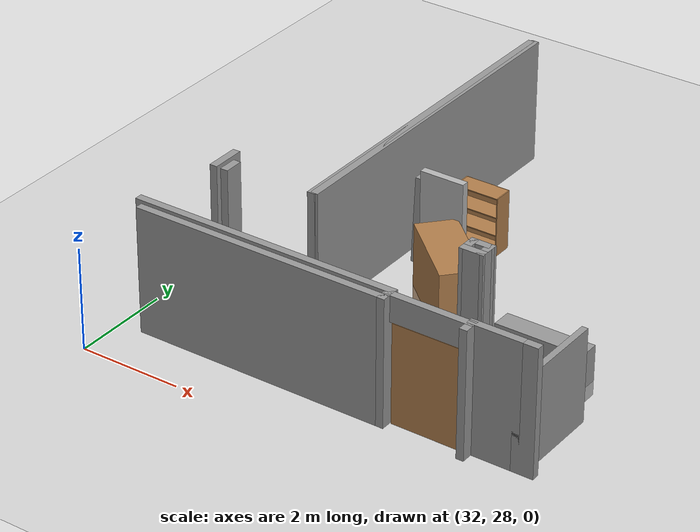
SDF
<sdf version="1.6">
 <world name="default">
  <model name="ground_plane">
   <static>1</static>
   <link name="link">
    <collision name="collision">
     <geometry><plane><normal>0 0 1</normal><size>100 100</size></plane></geometry>
     <surface><friction><ode><mu>100</mu><mu2>50</mu2></ode></friction></surface>
    </collision>
    <visual name="visual">
     <cast_shadows>0</cast_shadows>
     <geometry><plane><normal>0 0 1</normal><size>100 100</size></plane></geometry>
     <material>
      <script><uri>file://media/materials/scripts/gazebo.material</uri><name>Gazebo/Grey</name></script>
     </material>
    </visual>
   </link>
  </model>
  <model name="CVSSP">
   <pose>23.8714 24.094 0 0 -0 0</pose>
   <link name="Wall_101">
    <collision name="Wall_101_Collision">
     <geometry><box><size>0.38805 0.15 2.5</size></box></geometry>
     <pose>0 0 1.25 0 -0 0</pose>
    </collision>
    <visual name="Wall_101_Visual">
     <pose>0 0 1.25 0 -0 0</pose>
     <geometry><box><size>0.38805 0.15 2.5</size></box></geometry>
     <material>
      <script><uri>file://media/materials/scripts/gazebo.material</uri><name>Gazebo/Grey</name></script>
      <ambient>1 1 1 1</ambient>
     </material>
    </visual>
    <pose>13.6125 5.08725 0 0 0 -1.5708</pose>
   </link>
   <link name="Wall_103">
    <pose>14.4193 5.12692 0 0 -0 3.13861</pose>
    <visual name="Wall_103_Visual_0">
     <pose>-0.803949 0 1.25 0 -0 0</pose>
     <geometry><box><size>0.113401 0.15 2.5</size></box></geometry>
     <material>
      <script><uri>file://media/materials/scripts/gazebo.material</uri><name>Gazebo/Grey</name></script>
      <ambient>1 1 1 1</ambient>
     </material>
    </visual>
    <collision name="Wall_103_Collision_0">
     <geometry><box><size>0.113401 0.15 2.5</size></box></geometry>
     <pose>-0.803949 0 1.25 0 -0 0</pose>
    </collision>
    <visual name="Wall_103_Visual_1">
     <pose>0.799121 0 1.25 0 -0 0</pose>
     <geometry><box><size>0.123058 0.15 2.5</size></box></geometry>
     <material>
      <script><uri>file://media/materials/scripts/gazebo.material</uri><name>Gazebo/Grey</name></script>
      <ambient>1 1 1 1</ambient>
     </material>
    </visual>
    <collision name="Wall_103_Collision_1">
     <geometry><box><size>0.123058 0.15 2.5</size></box></geometry>
     <pose>0.799121 0 1.25 0 -0 0</pose>
    </collision>
    <visual name="Wall_103_Visual_2">
     <pose>-0.004828 0 2.25 0 -0 0</pose>
     <geometry><box><size>1.48484 0.15 0.5</size></box></geometry>
     <material>
      <script><uri>file://media/materials/scripts/gazebo.material</uri><name>Gazebo/Grey</name></script>
      <ambient>1 1 1 1</ambient>
     </material>
    </visual>
    <collision name="Wall_103_Collision_2">
     <geometry><box><size>1.48484 0.15 0.5</size></box></geometry>
     <pose>-0.004828 0 2.25 0 -0 0</pose>
    </collision>
   </link>
   <link name="Wall_105">
    <collision name="Wall_105_Collision">
     <geometry><box><size>0.321526 0.15 2.5</size></box></geometry>
     <pose>0 0 1.25 0 -0 0</pose>
    </collision>
    <visual name="Wall_105_Visual">
     <pose>0 0 1.25 0 -0 0</pose>
     <geometry><box><size>0.321526 0.15 2.5</size></box></geometry>
     <material>
      <script><uri>file://media/materials/scripts/gazebo.material</uri><name>Gazebo/Grey</name></script>
      <ambient>1 1 1 1</ambient>
     </material>
    </visual>
    <pose>15.205 5.04453 0 0 0 -1.5708</pose>
   </link>
   <link name="Wall_110">
    <collision name="Wall_110_Collision">
     <geometry><box><size>0.435877 0.15 2.5</size></box></geometry>
     <pose>0 0 1.25 0 -0 0</pose>
    </collision>
    <visual name="Wall_110_Visual">
     <pose>0 0 1.25 0 -0 0</pose>
     <geometry><box><size>0.435877 0.15 2.5</size></box></geometry>
     <material>
      <script><uri>file://media/materials/scripts/gazebo.material</uri><name>Gazebo/Grey</name></script>
      <ambient>1 1 1 1</ambient>
     </material>
    </visual>
    <pose>16.2513 5.17604 0 0 -0 0</pose>
   </link>
   <link name="Wall_112">
    <collision name="Wall_112_Collision">
     <geometry><box><size>1.05344 0.15 2.5</size></box></geometry>
     <pose>0 0 1.25 0 -0 0</pose>
    </collision>
    <visual name="Wall_112_Visual">
     <pose>0 0 1.25 0 -0 0</pose>
     <geometry><box><size>1.05344 0.15 2.5</size></box></geometry>
     <material>
      <script><uri>file://media/materials/scripts/gazebo.material</uri><name>Gazebo/Grey</name></script>
      <ambient>1 1 1 1</ambient>
     </material>
    </visual>
    <pose>15.6567 5.17604 0 0 -0 3.14159</pose>
   </link>
   <link name="Wall_41">
    <collision name="Wall_41_Collision">
     <geometry><box><size>0.67 0.15 2.5</size></box></geometry>
     <pose>0 0 1.25 0 -0 0</pose>
    </collision>
    <visual name="Wall_41_Visual">
     <pose>0 0 1.25 0 -0 0</pose>
     <geometry><box><size>0.67 0.15 2.5</size></box></geometry>
     <material>
      <script><uri>file://media/materials/scripts/gazebo.material</uri><name>Gazebo/Grey</name></script>
      <ambient>1 1 1 1</ambient>
     </material>
    </visual>
    <pose>8.7575 7.13868 0 0 0 -1.5708</pose>
   </link>
   <link name="Wall_45">
    <collision name="Wall_45_Collision">
     <geometry><box><size>0.380217 0.15 2.5</size></box></geometry>
     <pose>0 0 1.25 0 -0 0</pose>
    </collision>
    <visual name="Wall_45_Visual">
     <pose>0 0 1.25 0 -0 0</pose>
     <geometry><box><size>0.380217 0.15 2.5</size></box></geometry>
     <material>
      <script><uri>file://media/materials/scripts/gazebo.material</uri><name>Gazebo/Grey</name></script>
      <ambient>1 1 1 1</ambient>
     </material>
    </visual>
    <pose>8.9975 6.98369 0 0 0 -1.5708</pose>
   </link>
   <link name="Wall_48">
    <collision name="Wall_48_Collision">
     <geometry><box><size>0.485616 0.15 2.5</size></box></geometry>
     <pose>0 0 1.25 0 -0 0</pose>
    </collision>
    <visual name="Wall_48_Visual">
     <pose>0 0 1.25 0 -0 0</pose>
     <geometry><box><size>0.485616 0.15 2.5</size></box></geometry>
     <material>
      <script><uri>file://media/materials/scripts/gazebo.material</uri><name>Gazebo/Grey</name></script>
      <ambient>1 1 1 1</ambient>
     </material>
    </visual>
    <pose>13.9944 7.29164 0 0 0 -0.000129</pose>
   </link>
   <link name="Wall_49">
    <collision name="Wall_49_Collision">
     <geometry><box><size>0.405637 0.15 2.5</size></box></geometry>
     <pose>0 0 1.25 0 -0 0</pose>
    </collision>
    <visual name="Wall_49_Visual">
     <pose>0 0 1.25 0 -0 0</pose>
     <geometry><box><size>0.405637 0.15 2.5</size></box></geometry>
     <material>
      <script><uri>file://media/materials/scripts/gazebo.material</uri><name>Gazebo/Grey</name></script>
      <ambient>1 1 1 1</ambient>
     </material>
    </visual>
    <pose>14.162 7.1638 0 0 0 -1.57228</pose>
   </link>
   <link name="Wall_50">
    <collision name="Wall_50_Collision">
     <geometry><box><size>0.483145 0.15 2.5</size></box></geometry>
     <pose>0 0 1.25 0 -0 0</pose>
    </collision>
    <visual name="Wall_50_Visual">
     <pose>0 0 1.25 0 -0 0</pose>
     <geometry><box><size>0.483145 0.15 2.5</size></box></geometry>
     <material>
      <script><uri>file://media/materials/scripts/gazebo.material</uri><name>Gazebo/Grey</name></script>
      <ambient>1 1 1 1</ambient>
     </material>
    </visual>
    <pose>13.9952 7.03593 0 0 0 -3.14129</pose>
   </link>
   <link name="Wall_51">
    <collision name="Wall_51_Collision">
     <geometry><box><size>0.405791 0.15 2.5</size></box></geometry>
     <pose>0 0 1.25 0 -0 0</pose>
    </collision>
    <visual name="Wall_51_Visual">
     <pose>0 0 1.25 0 -0 0</pose>
     <geometry><box><size>0.405791 0.15 2.5</size></box></geometry>
     <material>
      <script><uri>file://media/materials/scripts/gazebo.material</uri><name>Gazebo/Grey</name></script>
      <ambient>1 1 1 1</ambient>
     </material>
    </visual>
    <pose>13.8276 7.16378 0 0 -0 1.5792</pose>
   </link>
   <link name="Wall_53">
    <collision name="Wall_53_Collision">
     <geometry><box><size>7.09358 0.15 2.5</size></box></geometry>
     <pose>0 0 1.25 0 -0 0</pose>
    </collision>
    <visual name="Wall_53_Visual">
     <pose>0 0 1.25 0 -0 0</pose>
     <geometry><box><size>7.09358 0.15 2.5</size></box></geometry>
     <material>
      <script><uri>file://media/materials/scripts/gazebo.material</uri><name>Gazebo/Grey</name></script>
      <ambient>1 1 1 1</ambient>
     </material>
    </visual>
    <pose>10.7501 10.5821 0 0 0 -1.5708</pose>
   </link>
   <link name="Wall_60">
    <collision name="Wall_60_Collision">
     <geometry><box><size>7.09041 0.15 2.5</size></box></geometry>
     <pose>0 0 1.25 0 -0 0</pose>
    </collision>
    <visual name="Wall_60_Visual">
     <pose>0 0 1.25 0 -0 0</pose>
     <geometry><box><size>7.09041 0.15 2.5</size></box></geometry>
     <material>
      <script><uri>file://media/materials/scripts/gazebo.material</uri><name>Gazebo/Grey</name></script>
      <ambient>0.588235 0.588235 0.588235 1</ambient>
     </material>
    </visual>
    <pose>10.6949 10.5553 0 0 0 -1.57007</pose>
   </link>
   <link name="Wall_95">
    <collision name="Wall_95_Collision">
     <geometry><box><size>5.10938 0.15 2.5</size></box></geometry>
     <pose>0 0 1.25 0 -0 0</pose>
    </collision>
    <visual name="Wall_95_Visual">
     <pose>0 0 1.25 0 -0 0</pose>
     <geometry><box><size>5.10938 0.15 2.5</size></box></geometry>
     <material>
      <script><uri>file://media/materials/scripts/gazebo.material</uri><name>Gazebo/Grey</name></script>
      <ambient>1 1 1 1</ambient>
     </material>
    </visual>
    <pose>11.1328 4.96823 0 0 -0 0</pose>
   </link>
   <link name="Wall_99">
    <collision name="Wall_99_Collision">
     <geometry><box><size>5.30775 0.15 2.5</size></box></geometry>
     <pose>0 0 1.25 0 -0 0</pose>
    </collision>
    <visual name="Wall_99_Visual">
     <pose>0 0 1.25 0 -0 0</pose>
     <geometry><box><size>5.30775 0.15 2.5</size></box></geometry>
     <material>
      <script><uri>file://media/materials/scripts/gazebo.material</uri><name>Gazebo/Grey</name></script>
      <ambient>1 1 1 1</ambient>
     </material>
    </visual>
    <pose>11.0336 5.20628 0 0 -0 3.14159</pose>
   </link>
   <static>1</static>
  </model>
  <model name="bookshelf">
   <static>1</static>
   <link name="link">
    <inertial><mass>1</mass></inertial>
    <collision name="back">
     <pose>0 0.005 0.6 0 -0 0</pose>
     <geometry><box><size>0.9 0.01 1.2</size></box></geometry>
    </collision>
    <visual name="visual1">
     <pose>0 0.005 0.6 0 -0 0</pose>
     <geometry><box><size>0.9 0.01 1.2</size></box></geometry>
     <material>
      <script><uri>file://media/materials/scripts/gazebo.material</uri><name>Gazebo/Wood</name></script>
     </material>
    </visual>
    <collision name="left_side">
     <pose>0.45 -0.195 0.6 0 -0 0</pose>
     <geometry><box><size>0.02 0.4 1.2</size></box></geometry>
    </collision>
    <visual name="visual2">
     <pose>0.45 -0.195 0.6 0 -0 0</pose>
     <geometry><box><size>0.02 0.4 1.2</size></box></geometry>
     <material>
      <script><uri>file://media/materials/scripts/gazebo.material</uri><name>Gazebo/Wood</name></script>
     </material>
    </visual>
    <collision name="right_side">
     <pose>-0.45 -0.195 0.6 0 -0 0</pose>
     <geometry><box><size>0.02 0.4 1.2</size></box></geometry>
    </collision>
    <visual name="visual3">
     <pose>-0.45 -0.195 0.6 0 -0 0</pose>
     <geometry><box><size>0.02 0.4 1.2</size></box></geometry>
     <material>
      <script><uri>file://media/materials/scripts/gazebo.material</uri><name>Gazebo/Wood</name></script>
     </material>
    </visual>
    <collision name="bottom">
     <pose>0 -0.195 0.03 0 -0 0</pose>
     <geometry><box><size>0.88 0.4 0.06</size></box></geometry>
    </collision>
    <visual name="visual4">
     <pose>0 -0.195 0.03 0 -0 0</pose>
     <geometry><box><size>0.88 0.4 0.06</size></box></geometry>
     <material>
      <script><uri>file://media/materials/scripts/gazebo.material</uri><name>Gazebo/Wood</name></script>
     </material>
    </visual>
    <collision name="top">
     <pose>0 -0.195 1.19 0 -0 0</pose>
     <geometry><box><size>0.88 0.4 0.02</size></box></geometry>
    </collision>
    <visual name="visual5">
     <pose>0 -0.195 1.19 0 -0 0</pose>
     <geometry><box><size>0.88 0.4 0.02</size></box></geometry>
     <material>
      <script><uri>file://media/materials/scripts/gazebo.material</uri><name>Gazebo/Wood</name></script>
     </material>
    </visual>
    <collision name="low_shelf">
     <pose>0 -0.195 0.43 0 -0 0</pose>
     <geometry><box><size>0.88 0.4 0.02</size></box></geometry>
    </collision>
    <visual name="visual6">
     <pose>0 -0.195 0.43 0 -0 0</pose>
     <geometry><box><size>0.88 0.4 0.02</size></box></geometry>
     <material>
      <script><uri>file://media/materials/scripts/gazebo.material</uri><name>Gazebo/Wood</name></script>
     </material>
    </visual>
    <collision name="high_shelf">
     <pose>0 -0.195 0.8 0 -0 0</pose>
     <geometry><box><size>0.88 0.4 0.02</size></box></geometry>
    </collision>
    <visual name="visual7">
     <pose>0 -0.195 0.8 0 -0 0</pose>
     <geometry><box><size>0.88 0.4 0.02</size></box></geometry>
     <material>
      <script><uri>file://media/materials/scripts/gazebo.material</uri><name>Gazebo/Wood</name></script>
     </material>
    </visual>
   </link>
   <pose>35.6315 35.0893 0 0 -0 0</pose>
  </model>
  <model name="door">
   <link name="link_0">
    <visual name="visual">
     <pose>0 0 1 0 -0 0</pose>
     <geometry><box><size>0.9 0.15 2</size></box></geometry>
     <material>
      <script>
       <uri>model://door/materials/scripts</uri>
       <uri>model://door/materials/textures</uri>
       <name>door</name>
      </script>
     </material>
    </visual>
    <collision name="collision">
     <pose>0 0 1 0 -0 0</pose>
     <geometry><box><size>0.9 0.15 2</size></box></geometry>
    </collision>
   </link>
   <static>1</static>
   <pose>35.6184 33.6481 0 0 -0 0</pose>
  </model>
  <model name="basic_ply_door_corrected_wider">
   <link name="link">
    <pose>0.319611 -0 1.00385 0 -0 0.034884</pose>
    <inertial>
     <mass>0.5167</mass>
     <inertia>
      <ixx>0.00086117</ixx>
      <ixy>0</ixy>
      <ixz>0</ixz>
      <iyy>0.00086117</iyy>
      <iyz>0</iyz>
      <izz>0.00086117</izz>
     </inertia>
    </inertial>
    <visual name="visual">
     <geometry><box><size>1.4 0.1 1.96</size></box></geometry>
     <material>
      <script><uri>file://media/materials/scripts/gazebo.material</uri><name>Gazebo/Wood</name></script>
      <shader type="pixel"><normal_map>__default__</normal_map></shader>
      <ambient>1 1 1 1</ambient>
      <diffuse>1 1 1 1</diffuse>
      <specular>0.2 0.2 0.2 1</specular>
      <emissive>0 0 0 1</emissive>
     </material>
    </visual>
    <collision name="collision">
     <geometry><box><size>0.88 0.1 1.96</size></box></geometry>
     <surface>
      <friction>
       <ode><mu>1</mu><mu2>1</mu2><fdir1>0 0 0</fdir1><slip1>0</slip1><slip2>0</slip2></ode>
       <torsional>
        <coefficient>1</coefficient>
        <patch_radius>0</patch_radius>
        <surface_radius>0.01</surface_radius>
        <use_patch_radius>0</use_patch_radius>
        <ode><slip>0</slip></ode>
       </torsional>
      </friction>
      <bounce><restitution_coefficient>0</restitution_coefficient><threshold>1e+06</threshold></bounce>
      <contact>
       <collide_without_contact>0</collide_without_contact>
       <collide_without_contact_bitmask>1</collide_without_contact_bitmask>
       <collide_bitmask>1</collide_bitmask>
       <ode>
        <soft_cfm>0</soft_cfm>
        <soft_erp>0.2</soft_erp>
        <kp>100000</kp>
        <kd>100</kd>
        <max_vel>100</max_vel>
        <min_depth>0.001</min_depth>
       </ode>
       <bullet>
        <split_impulse>1</split_impulse>
        <split_impulse_penetration_threshold>-0.01</split_impulse_penetration_threshold>
        <soft_cfm>0</soft_cfm>
        <soft_erp>0.2</soft_erp>
        <kp>100000</kp>
        <kd>100</kd>
       </bullet>
      </contact>
     </surface>
    </collision>
   </link>
   <static>1</static>
   <pose>37.9469 29.2668 -0.036806 0 0 -0.036583</pose>
  </model>
  <model name="black_door__metal">
   <link name="link">
    <inertial>
     <mass>1</mass>
     <inertia>
      <ixx>0.166667</ixx>
      <ixy>0</ixy>
      <ixz>0</ixz>
      <iyy>0.166667</iyy>
      <iyz>0</iyz>
      <izz>0.166667</izz>
     </inertia>
    </inertial>
    <gravity>0</gravity>
    <visual name="visual">
     <geometry><box><size>1.82017 1.40458 0.120968</size></box></geometry>
     <material>
      <script><name>Gazebo/Grey</name><uri>file://media/materials/scripts/gazebo.material</uri></script>
      <shader type="pixel"><normal_map>__default__</normal_map></shader>
      <ambient>0.01 0.001 0.001 1</ambient>
      <diffuse>0.7 0.7 0.7 1</diffuse>
      <specular>0.01 0.01 0.01 1</specular>
      <emissive>0 0 0 1</emissive>
     </material>
    </visual>
    <collision name="collision">
     <geometry><box><size>1.82017 1.40458 0.120968</size></box></geometry>
     <surface>
      <friction>
       <ode><mu>1</mu><mu2>1</mu2><fdir1>0 0 0</fdir1><slip1>0</slip1><slip2>0</slip2></ode>
       <torsional>
        <coefficient>1</coefficient>
        <patch_radius>0</patch_radius>
        <surface_radius>0</surface_radius>
        <use_patch_radius>1</use_patch_radius>
        <ode><slip>0</slip></ode>
       </torsional>
      </friction>
      <bounce><restitution_coefficient>0</restitution_coefficient><threshold>1e+06</threshold></bounce>
      <contact>
       <collide_without_contact>0</collide_without_contact>
       <collide_without_contact_bitmask>1</collide_without_contact_bitmask>
       <collide_bitmask>1</collide_bitmask>
       <ode>
        <soft_cfm>0</soft_cfm>
        <soft_erp>0.2</soft_erp>
        <kp>1e+13</kp>
        <kd>1</kd>
        <max_vel>0.01</max_vel>
        <min_depth>0</min_depth>
       </ode>
       <bullet>
        <split_impulse>1</split_impulse>
        <split_impulse_penetration_threshold>-0.01</split_impulse_penetration_threshold>
        <soft_cfm>0</soft_cfm>
        <soft_erp>0.2</soft_erp>
        <kp>1e+13</kp>
        <kd>1</kd>
       </bullet>
      </contact>
     </surface>
    </collision>
   </link>
   <static>1</static>
   <pose>40.1921 30.1776 1.06437 -1.57083 -1.57079 1.57076</pose>
  </model>
  <model name="plastic_box_0">
   <link name="Wall">
    <pose>0 0 0.1985 0 -0 0</pose>
    <inertial>
     <mass>5</mass>
     <inertia><ixx>0.1022</ixx><iyy>0.4107</iyy><izz>0.3815</izz><ixy>0</ixy><ixz>0</ixz><iyz>0</iyz></inertia>
    </inertial>
    <gravity>0</gravity>
    <visual name="Wall_Visual">
     <geometry><box><size>1.75 0.4 1</size></box></geometry>
     <material>
      <script><uri>file://media/materials/scripts/gazebo.material</uri><name>Gazebo/Grey</name></script>
      <ambient>1 1 1 1</ambient>
      <shader type="pixel"><normal_map>__default__</normal_map></shader>
      <diffuse>0.7 0.7 0.7 1</diffuse>
      <specular>0.01 0.01 0.01 1</specular>
      <emissive>0 0 0 1</emissive>
     </material>
    </visual>
    <collision name="Wall_Collision">
     <geometry><box><size>1.75 0.4 1</size></box></geometry>
     <surface>
      <friction>
       <ode><mu>1</mu><mu2>1</mu2><fdir1>0 0 0</fdir1><slip1>0</slip1><slip2>0</slip2></ode>
       <torsional>
        <coefficient>1</coefficient>
        <patch_radius>0</patch_radius>
        <surface_radius>0</surface_radius>
        <use_patch_radius>1</use_patch_radius>
        <ode><slip>0</slip></ode>
       </torsional>
      </friction>
      <bounce><restitution_coefficient>0</restitution_coefficient><threshold>1e+06</threshold></bounce>
      <contact>
       <collide_without_contact>0</collide_without_contact>
       <collide_without_contact_bitmask>1</collide_without_contact_bitmask>
       <collide_bitmask>1</collide_bitmask>
       <ode>
        <soft_cfm>0</soft_cfm>
        <soft_erp>0.2</soft_erp>
        <kp>1e+13</kp>
        <kd>1</kd>
        <max_vel>0.01</max_vel>
        <min_depth>0</min_depth>
       </ode>
       <bullet>
        <split_impulse>1</split_impulse>
        <split_impulse_penetration_threshold>-0.01</split_impulse_penetration_threshold>
        <soft_cfm>0</soft_cfm>
        <soft_erp>0.2</soft_erp>
        <kp>1e+13</kp>
        <kd>1</kd>
       </bullet>
      </contact>
     </surface>
    </collision>
   </link>
   <static>1</static>
   <pose>38.7534 32.056 0 0 -0 0</pose>
  </model>
  <model name="ply_wood_desk">
   <link name="link">
    <pose>0 0 0.05 0 -0 0</pose>
    <inertial>
     <mass>0.5167</mass>
     <inertia>
      <ixx>0.00086117</ixx>
      <ixy>0</ixy>
      <ixz>0</ixz>
      <iyy>0.00086117</iyy>
      <iyz>0</iyz>
      <izz>0.00086117</izz>
     </inertia>
    </inertial>
    <visual name="visual">
     <geometry><box><size>1.8 0.8 2.4</size></box></geometry>
     <material>
      <script><uri>file://media/materials/scripts/gazebo.material</uri><name>Gazebo/Wood</name></script>
      <shader type="pixel"><normal_map>__default__</normal_map></shader>
      <ambient>1 1 1 1</ambient>
      <diffuse>1 1 1 1</diffuse>
      <specular>0.2 0.2 0.2 1</specular>
      <emissive>0 0 0 1</emissive>
     </material>
    </visual>
    <collision name="collision">
     <geometry><box><size>0.1 0.1 0.1</size></box></geometry>
     <surface>
      <friction>
       <ode><mu>1</mu><mu2>1</mu2><fdir1>0 0 0</fdir1><slip1>0</slip1><slip2>0</slip2></ode>
       <torsional>
        <coefficient>1</coefficient>
        <patch_radius>0</patch_radius>
        <surface_radius>0.01</surface_radius>
        <use_patch_radius>0</use_patch_radius>
        <ode><slip>0</slip></ode>
       </torsional>
      </friction>
      <bounce><restitution_coefficient>0</restitution_coefficient><threshold>1e+06</threshold></bounce>
      <contact>
       <collide_without_contact>0</collide_without_contact>
       <collide_without_contact_bitmask>1</collide_without_contact_bitmask>
       <collide_bitmask>1</collide_bitmask>
       <ode>
        <soft_cfm>0</soft_cfm>
        <soft_erp>0.2</soft_erp>
        <kp>100000</kp>
        <kd>100</kd>
        <max_vel>100</max_vel>
        <min_depth>0.001</min_depth>
       </ode>
       <bullet>
        <split_impulse>1</split_impulse>
        <split_impulse_penetration_threshold>-0.01</split_impulse_penetration_threshold>
        <soft_cfm>0</soft_cfm>
        <soft_erp>0.2</soft_erp>
        <kp>100000</kp>
        <kd>100</kd>
       </bullet>
      </contact>
     </surface>
    </collision>
   </link>
   <static>1</static>
   <pose>36.339 32.7361 0 0 0 -0.73028</pose>
  </model>
  <model name="plastic_box_0_clone">
   <link name="Wall">
    <pose>0 0 0.1985 0 -0 0</pose>
    <inertial>
     <mass>5</mass>
     <inertia><ixx>0.1022</ixx><iyy>0.4107</iyy><izz>0.3815</izz><ixy>0</ixy><ixz>0</ixz><iyz>0</iyz></inertia>
    </inertial>
    <gravity>0</gravity>
    <visual name="Wall_Visual">
     <geometry><box><size>1.75 0.4 0.75</size></box></geometry>
     <material>
      <script><uri>file://media/materials/scripts/gazebo.material</uri><name>Gazebo/Grey</name></script>
      <ambient>1 1 1 1</ambient>
      <shader type="pixel"><normal_map>__default__</normal_map></shader>
      <diffuse>0.7 0.7 0.7 1</diffuse>
      <specular>0.01 0.01 0.01 1</specular>
      <emissive>0 0 0 1</emissive>
     </material>
    </visual>
    <collision name="Wall_Collision">
     <geometry><box><size>1.75 0.4 0.75</size></box></geometry>
     <surface>
      <friction>
       <ode><mu>1</mu><mu2>1</mu2><fdir1>0 0 0</fdir1><slip1>0</slip1><slip2>0</slip2></ode>
       <torsional>
        <coefficient>1</coefficient>
        <patch_radius>0</patch_radius>
        <surface_radius>0</surface_radius>
        <use_patch_radius>1</use_patch_radius>
        <ode><slip>0</slip></ode>
       </torsional>
      </friction>
      <bounce><restitution_coefficient>0</restitution_coefficient><threshold>1e+06</threshold></bounce>
      <contact>
       <collide_without_contact>0</collide_without_contact>
       <collide_without_contact_bitmask>1</collide_without_contact_bitmask>
       <collide_bitmask>1</collide_bitmask>
       <ode>
        <soft_cfm>0</soft_cfm>
        <soft_erp>0.2</soft_erp>
        <kp>1e+13</kp>
        <kd>1</kd>
        <max_vel>0.01</max_vel>
        <min_depth>0</min_depth>
       </ode>
       <bullet>
        <split_impulse>1</split_impulse>
        <split_impulse_penetration_threshold>-0.01</split_impulse_penetration_threshold>
        <soft_cfm>0</soft_cfm>
        <soft_erp>0.2</soft_erp>
        <kp>1e+13</kp>
        <kd>1</kd>
       </bullet>
      </contact>
     </surface>
    </collision>
   </link>
   <static>1</static>
   <pose>35.2032 33.7756 0.949561 3.14159 1.52673 3.14159</pose>
  </model>
 </world>
</sdf>
